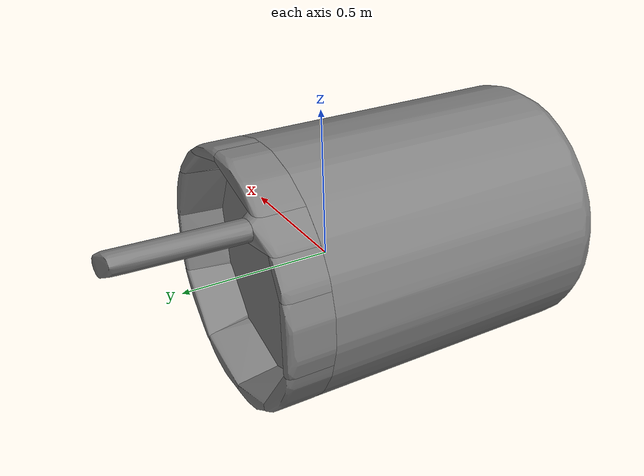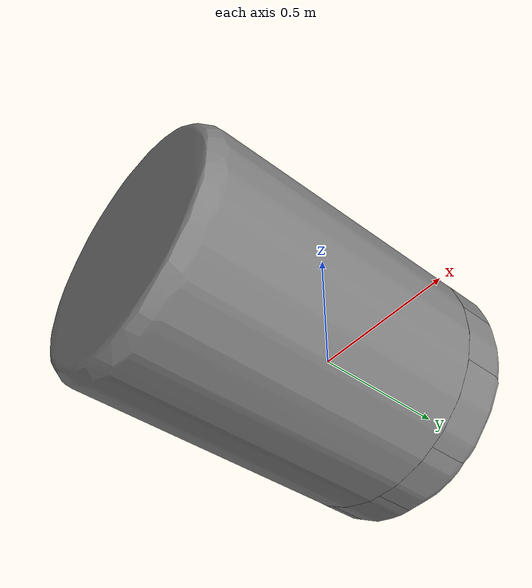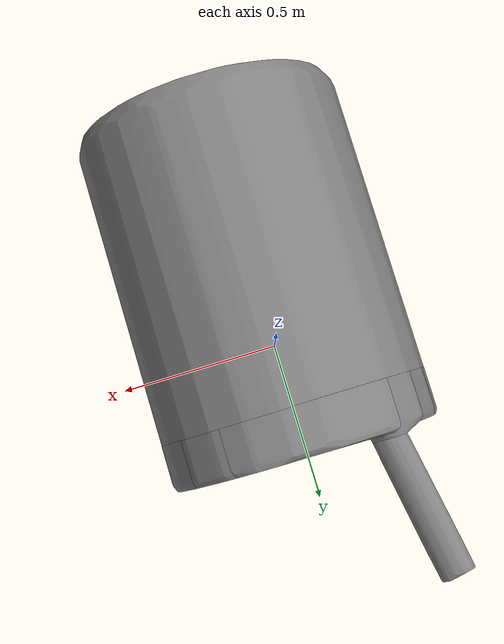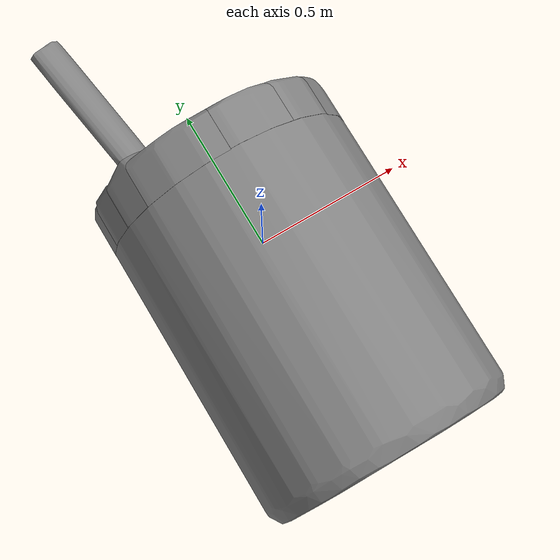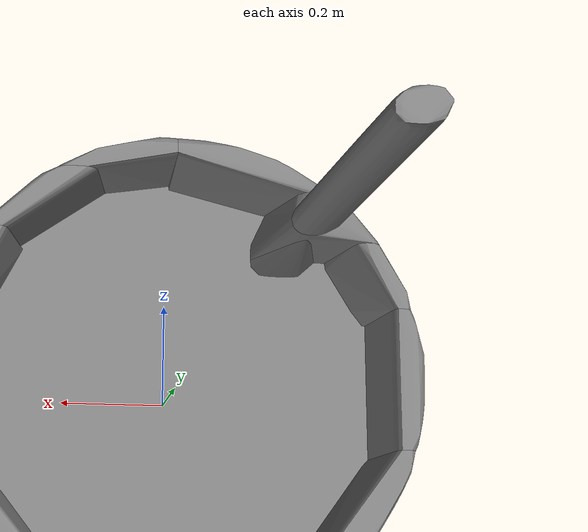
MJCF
<mujoco model="MuJoCo Model">
  <compiler angle="radian" meshdir="."/>

  <asset>
    <mesh name="convex_piece_012.obj" file="meshes/convex_piece_012.obj"/>
    <mesh name="convex_piece_014.obj" file="meshes/convex_piece_014.obj"/>
    <mesh name="convex_piece_004.obj" file="meshes/convex_piece_004.obj"/>
    <mesh name="convex_piece_001.obj" file="meshes/convex_piece_001.obj"/>
    <mesh name="convex_piece_005.obj" file="meshes/convex_piece_005.obj"/>
    <mesh name="convex_piece_013.obj" file="meshes/convex_piece_013.obj"/>
    <mesh name="convex_piece_002.obj" file="meshes/convex_piece_002.obj"/>
    <mesh name="convex_piece_010.obj" file="meshes/convex_piece_010.obj"/>
    <mesh name="convex_piece_006.obj" file="meshes/convex_piece_006.obj"/>
    <mesh name="convex_piece_003.obj" file="meshes/convex_piece_003.obj"/>
    <mesh name="convex_piece_008.obj" file="meshes/convex_piece_008.obj"/>
    <mesh name="convex_piece_011.obj" file="meshes/convex_piece_011.obj"/>
    <mesh name="convex_piece_000.obj" file="meshes/convex_piece_000.obj"/>
    <mesh name="convex_piece_009.obj" file="meshes/convex_piece_009.obj"/>
    <mesh name="convex_piece_007.obj" file="meshes/convex_piece_007.obj"/>
  </asset>

  <worldbody>
    <geom name="object_visual_0" type="mesh" contype="0" conaffinity="0" density="0" mesh="convex_piece_012.obj"/>
    <geom name="object_collision_0" type="mesh" mesh="convex_piece_012.obj"/>
    <geom name="object_visual_1" type="mesh" contype="0" conaffinity="0" density="0" mesh="convex_piece_014.obj"/>
    <geom name="object_collision_1" type="mesh" mesh="convex_piece_014.obj"/>
    <geom name="object_visual_2" type="mesh" contype="0" conaffinity="0" density="0" mesh="convex_piece_004.obj"/>
    <geom name="object_collision_2" type="mesh" mesh="convex_piece_004.obj"/>
    <geom name="object_visual_3" type="mesh" contype="0" conaffinity="0" density="0" mesh="convex_piece_001.obj"/>
    <geom name="object_collision_3" type="mesh" mesh="convex_piece_001.obj"/>
    <geom name="object_visual_4" type="mesh" contype="0" conaffinity="0" density="0" mesh="convex_piece_005.obj"/>
    <geom name="object_collision_4" type="mesh" mesh="convex_piece_005.obj"/>
    <geom name="object_visual_5" type="mesh" contype="0" conaffinity="0" density="0" mesh="convex_piece_013.obj"/>
    <geom name="object_collision_5" type="mesh" mesh="convex_piece_013.obj"/>
    <geom name="object_visual_6" type="mesh" contype="0" conaffinity="0" density="0" mesh="convex_piece_002.obj"/>
    <geom name="object_collision_6" type="mesh" mesh="convex_piece_002.obj"/>
    <geom name="object_visual_7" type="mesh" contype="0" conaffinity="0" density="0" mesh="convex_piece_010.obj"/>
    <geom name="object_collision_7" type="mesh" mesh="convex_piece_010.obj"/>
    <geom name="object_visual_8" type="mesh" contype="0" conaffinity="0" density="0" mesh="convex_piece_006.obj"/>
    <geom name="object_collision_8" type="mesh" mesh="convex_piece_006.obj"/>
    <geom name="object_visual_9" type="mesh" contype="0" conaffinity="0" density="0" mesh="convex_piece_003.obj"/>
    <geom name="object_collision_9" type="mesh" mesh="convex_piece_003.obj"/>
    <geom name="object_visual_10" type="mesh" contype="0" conaffinity="0" density="0" mesh="convex_piece_008.obj"/>
    <geom name="object_collision_10" type="mesh" mesh="convex_piece_008.obj"/>
    <geom name="object_visual_11" type="mesh" contype="0" conaffinity="0" density="0" mesh="convex_piece_011.obj"/>
    <geom name="object_collision_11" type="mesh" mesh="convex_piece_011.obj"/>
    <geom name="object_visual_12" type="mesh" contype="0" conaffinity="0" density="0" mesh="convex_piece_000.obj"/>
    <geom name="object_collision_12" type="mesh" mesh="convex_piece_000.obj"/>
    <geom name="object_visual_13" type="mesh" contype="0" conaffinity="0" density="0" mesh="convex_piece_009.obj"/>
    <geom name="object_collision_13" type="mesh" mesh="convex_piece_009.obj"/>
    <geom name="object_visual_14" type="mesh" contype="0" conaffinity="0" density="0" mesh="convex_piece_007.obj"/>
    <geom name="object_collision_14" type="mesh" mesh="convex_piece_007.obj"/>
  </worldbody>
</mujoco>
